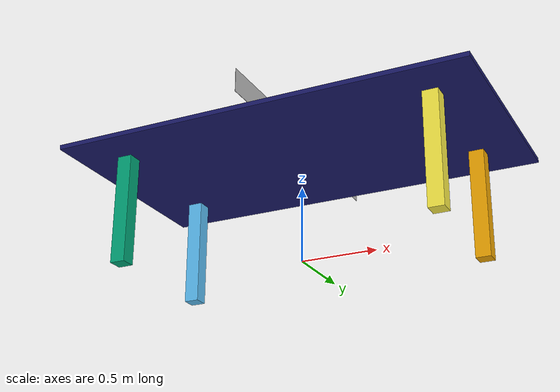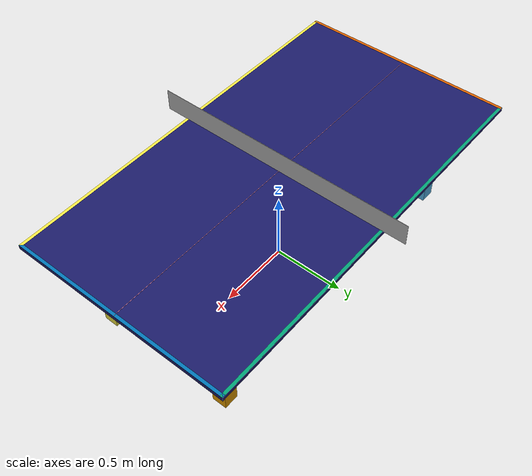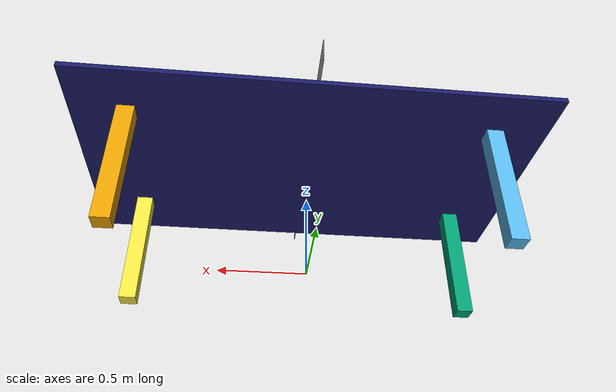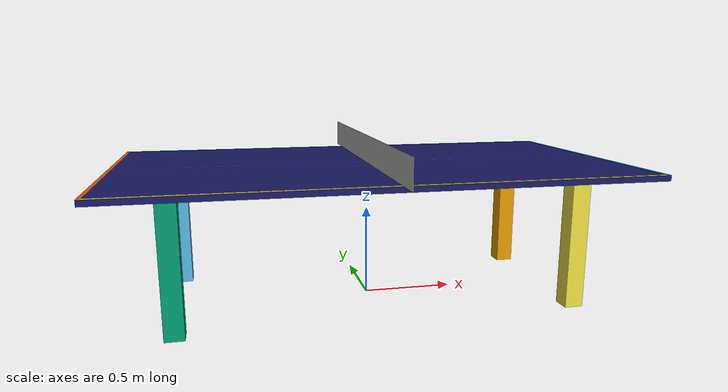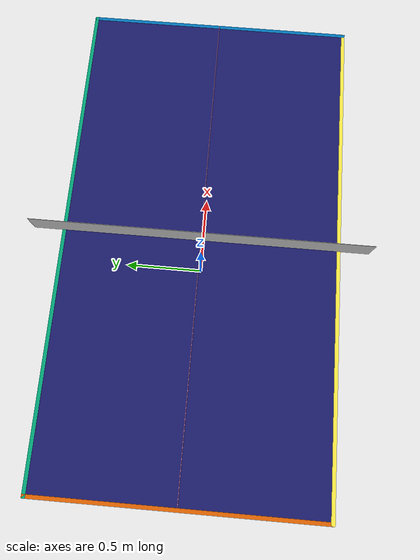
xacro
<?xml version="1.0"?>
<robot name="table" xmlns:xacro="http://ros.org/wiki/xacro">
    <xacro:arg name="easy_collision" default="false"/>
    <material name="table_colour">
        <color rgba="0.1 0.1 0.4 1"/>
    </material>

    <gazebo reference="tt_table_link">
        <material>Gazebo/Blue</material>
    </gazebo>

    <link name="tt_table_center_link"/>

    <link name="tt_table_link">
        <inertial>
            <mass value="100"/>
            <origin xyz="0 0 0" rpy="0 0 0"/>
            <inertia  ixx="19.38770833333333" ixy="0" ixz="0" iyy="62.57083333333333" iyz="0" izz="81.94354166666666" />
        </inertial>
        <visual>
            <origin xyz="0 0 0" rpy="0 0 0" />
            <geometry>
                <box size="2.74 1.525 0.03" />
            </geometry>
            <material name="table_colour"/>
        </visual>
        <collision>
            <xacro:if value="$(arg easy_collision)">
                <origin xyz="0 0 -0.37" rpy="0 0 0" />
                <geometry>
                    <box size="2.74 1.525 0.77" />
                </geometry>
            </xacro:if>
            <xacro:unless value="$(arg easy_collision)">
                <origin xyz="0 0 0" rpy="0 0 0" />
                <geometry>
                    <box size="2.74 1.525 0.03" />
                </geometry>
            </xacro:unless>
        </collision>
    </link>

    <joint name="tt_table_joint" type="fixed">
        <parent link="tt_table_center_link"/>
        <child link="tt_table_link"/>
        <origin xyz="0 0 0.745" rpy="0 0 0" />
    </joint>

    <link name="tt_table_boundary_1_link">
        <inertial>
            <mass value="0"/>
            <origin xyz="0 0 0" rpy="0 0 0"/>
            <inertia  ixx="6.997767154121414" ixy="0" ixz="0" iyy="17.876069102859596" iyz="0" izz="18.49883625698101" />
        </inertial>
        <visual>
            <origin xyz="0 0 0" rpy="0 0 0" />
            <geometry>
                <box size="2.74 0.02 0.001" />
            </geometry>
        </visual>
    </link>

    <joint name="tt_table_boundary_1_joint" type="fixed">
        <parent link="tt_table_link"/>
        <child link="tt_table_boundary_1_link"/>
        <origin xyz="0 0.7525 0.015" rpy="0 0 0" />
    </joint>

    <link name="tt_table_boundary_2_link">
        <inertial>
            <mass value="0"/>
            <origin xyz="0 0 0" rpy="0 0 0"/>
            <inertia  ixx="6.997767154121414" ixy="0" ixz="0" iyy="17.876069102859596" iyz="0" izz="18.49883625698101" />
        </inertial>
        <visual>
            <origin xyz="0 0 0" rpy="0 0 0" />
            <geometry>
                <box size="2.74 0.02 0.001" />
            </geometry>
        </visual>
    </link>

    <joint name="tt_table_boundary_2_joint" type="fixed">
        <parent link="tt_table_link"/>
        <child link="tt_table_boundary_2_link"/>
        <origin xyz="0 -0.7525 0.015" rpy="0 0 0" />
    </joint>

    <link name="tt_table_boundary_3_link">
        <inertial>
            <mass value="0"/>
            <origin xyz="0 0 0" rpy="0 0 0"/>
            <inertia  ixx="6.997767154121414" ixy="0" ixz="0" iyy="17.876069102859596" iyz="0" izz="18.49883625698101" />
        </inertial>
        <visual>
            <origin xyz="0 0 0" rpy="0 0 0" />
            <geometry>
                <box size="0.02 1.525 0.001" />
            </geometry>
        </visual>
    </link>

    <joint name="tt_table_boundary_3_joint" type="fixed">
        <parent link="tt_table_link"/>
        <child link="tt_table_boundary_3_link"/>
        <origin xyz="1.36 0 0.015" rpy="0 0 0" />
    </joint>

    <link name="tt_table_boundary_4_link">
        <inertial>
            <mass value="0"/>
            <origin xyz="0 0 0" rpy="0 0 0"/>
            <inertia  ixx="6.997767154121414" ixy="0" ixz="0" iyy="17.876069102859596" iyz="0" izz="18.49883625698101" />
        </inertial>
        <visual>
            <origin xyz="0 0 0" rpy="0 0 0" />
            <geometry>
                <box size="0.02 1.525 0.001" />
            </geometry>
        </visual>
    </link>

    <joint name="tt_table_boundary_4_joint" type="fixed">
        <parent link="tt_table_link"/>
        <child link="tt_table_boundary_4_link"/>
        <origin xyz="-1.36 0 0.015" rpy="0 0 0" />
    </joint>

    <link name="tt_table_boundary_5_link">
        <inertial>
            <mass value="0"/>
            <origin xyz="0 0 0" rpy="0 0 0"/>
            <inertia  ixx="6.997767154121414" ixy="0" ixz="0" iyy="17.876069102859596" iyz="0" izz="18.49883625698101" />
        </inertial>
        <visual>
            <origin xyz="0 0 0" rpy="0 0 0" />
            <geometry>
                <box size="2.74 0.003 0.001" />
            </geometry>
        </visual>
    </link>

    <joint name="tt_table_boundary_5_joint" type="fixed">
        <parent link="tt_table_link"/>
        <child link="tt_table_boundary_5_link"/>
        <origin xyz="0 0 0.015" rpy="0 0 0" />
    </joint>

    <link name="tt_table_net_link">
        <inertial>
            <mass value="0"/>
            <origin xyz="0 0 0" rpy="0 0 0"/>
            <inertia  ixx="6.997767154121414" ixy="0" ixz="0" iyy="17.876069102859596" iyz="0" izz="18.49883625698101" />
        </inertial>
        <visual>
            <origin xyz="0 0 0" rpy="0 0 0" />
            <geometry>
                <box size="0.002 1.83 0.1525" />
            </geometry>
        </visual>
        <collision>
            <xacro:if value="$(arg easy_collision)">
                <origin xyz="0 0 -0.37" rpy="0 0 0" />
                <geometry>
                    <box size="0.002 1.83 0.8925" />
                </geometry>
            </xacro:if>
            <xacro:unless value="$(arg easy_collision)">
                <origin xyz="0 0 0" rpy="0 0 0" />
                <geometry>
                    <box size="0.002 1.83 0.1525" />
                </geometry>
            </xacro:unless>
        </collision>
    </link>

    <joint name="tt_table_net_joint" type="fixed">
        <parent link="tt_table_link"/>
        <child link="tt_table_net_link"/>
        <origin xyz="0 0 0.091" rpy="0 0 0" />
    </joint>

    <link name="tt_table_leg_1_link">
        <inertial>
            <mass value="9"/>
            <origin xyz="0 0 0" rpy="0 0 0"/>
            <inertia  ixx="0.40717499999999995" ixy="0" ixz="0" iyy="0.40717499999999995" iyz="0" izz="0.015000000000000003" />
        </inertial>
        <visual>
            <origin xyz="0 0 0" rpy="0 0 0" />
            <geometry>
                <box size="0.1 0.1 0.73" />
            </geometry>
        </visual>
        <collision>
            <origin xyz="0 0 0" rpy="0 0 0" />
            <geometry>
                <box size="0.1 0.1 0.73" />
            </geometry>
        </collision>
    </link>

    <joint name="tt_table_leg_1_joint" type="fixed">
        <parent link="tt_table_center_link"/>
        <child link="tt_table_leg_1_link"/>
        <origin xyz="1.05 0.45 0.365" rpy="0 0 0" />
    </joint>

    <link name="tt_table_leg_2_link">
        <inertial>
            <mass value="9"/>
            <origin xyz="0 0 0" rpy="0 0 0"/>
            <inertia  ixx="0.40717499999999995" ixy="0" ixz="0" iyy="0.40717499999999995" iyz="0" izz="0.015000000000000003" />
        </inertial>
        <visual>
            <origin xyz="0 0 0" rpy="0 0 0" />
            <geometry>
                <box size="0.1 0.1 0.73" />
            </geometry>
        </visual>
        <collision>
            <origin xyz="0 0 0" rpy="0 0 0" />
            <geometry>
                <box size="0.1 0.1 0.73" />
            </geometry>
        </collision>
    </link>

    <joint name="tt_table_leg_2_joint" type="fixed">
        <parent link="tt_table_center_link"/>
        <child link="tt_table_leg_2_link"/>
        <origin xyz="-1.05 0.45 0.365" rpy="0 0 0" />
    </joint>

    <link name="tt_table_leg_3_link">
        <inertial>
            <mass value="9"/>
            <origin xyz="0 0 0" rpy="0 0 0"/>
            <inertia  ixx="6.997767154121414" ixy="0" ixz="0" iyy="17.876069102859596" iyz="0" izz="18.49883625698101" />
        </inertial>
        <visual>
            <origin xyz="0 0 0" rpy="0 0 0" />
            <geometry>
                <box size="0.1 0.1 0.73" />
            </geometry>
        </visual>
        <collision>
            <origin xyz="0 0 0" rpy="0 0 0" />
            <geometry>
                <box size="0.1 0.1 0.73" />
            </geometry>
        </collision>
    </link>

    <joint name="tt_table_leg_3_joint" type="fixed">
        <parent link="tt_table_center_link"/>
        <child link="tt_table_leg_3_link"/>
        <origin xyz="-1.05 -0.45 0.365" rpy="0 0 0" />
    </joint>

    <link name="tt_table_leg_4_link">
        <inertial>
            <mass value="9"/>
            <origin xyz="0 0 0" rpy="0 0 0"/>
            <inertia  ixx="0.40717499999999995" ixy="0" ixz="0" iyy="0.40717499999999995" iyz="0" izz="0.015000000000000003" />
        </inertial>
        <visual>
            <origin xyz="0 0 0" rpy="0 0 0" />
            <geometry>
                <box size="0.1 0.1 0.73" />
            </geometry>
        </visual>
        <collision>
            <origin xyz="0 0 0" rpy="0 0 0" />
            <geometry>
                <box size="0.1 0.1 0.73" />
            </geometry>
        </collision>
    </link>

    <joint name="tt_table_leg_4_joint" type="fixed">
        <parent link="tt_table_center_link"/>
        <child link="tt_table_leg_4_link"/>
        <origin xyz="1.05 -0.45 0.365" rpy="0 0 0" />
    </joint>

    <gazebo>
        <plugin name="table_position_plugin" filename="libgazebo_ros_p3d.so">
            <ros>
                <namespace>p3d</namespace>
                <remapping>odom:=table_odom</remapping>
            </ros>
            <frame_name>map</frame_name>
            <body_name>tt_table_center_link</body_name>
            <update_rate>1.0</update_rate>
            <gaussian_noise>0.0</gaussian_noise>
        </plugin>
    </gazebo>

    <gazebo>
        <static>true</static>
    </gazebo>

</robot>
